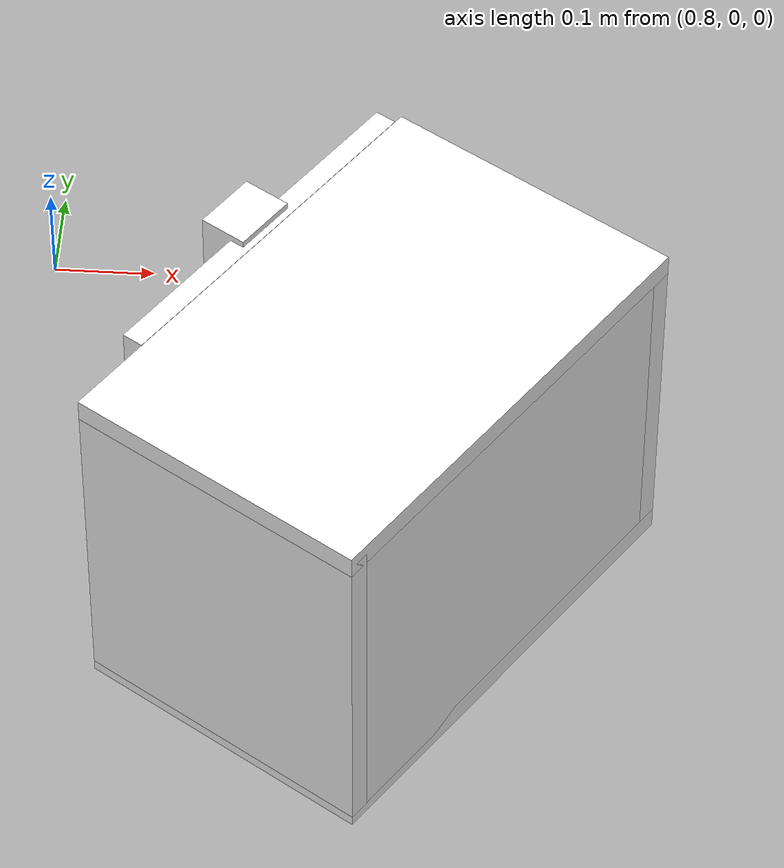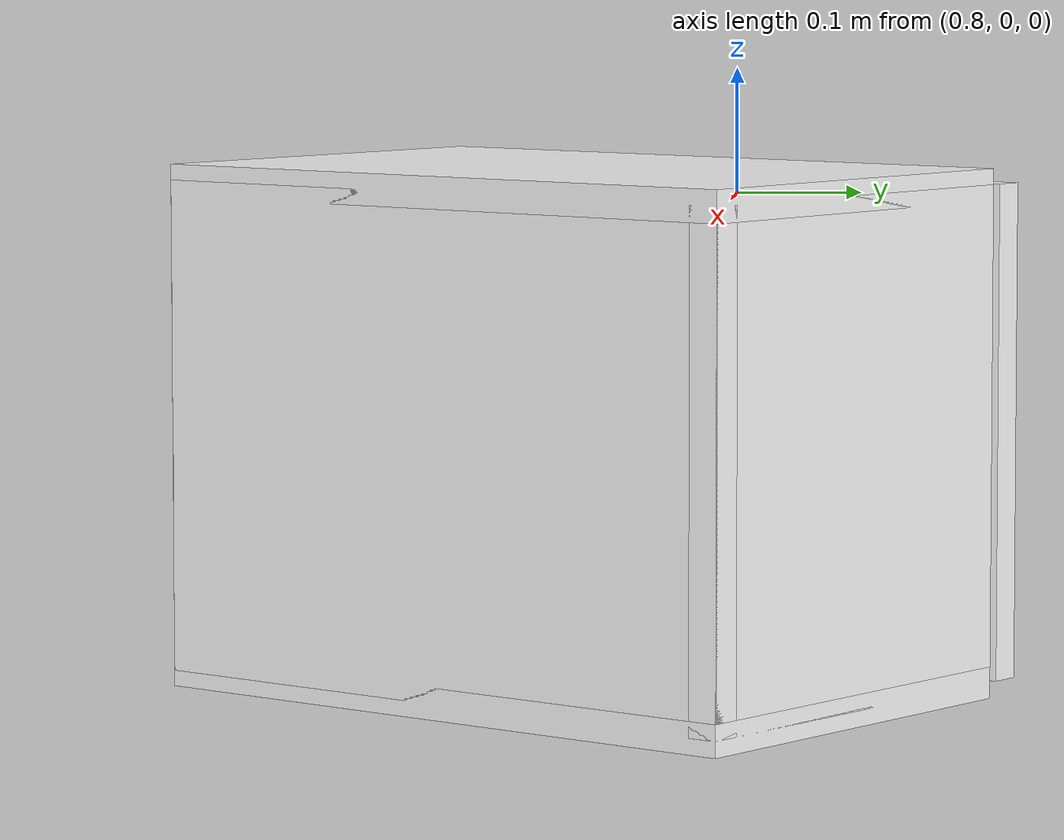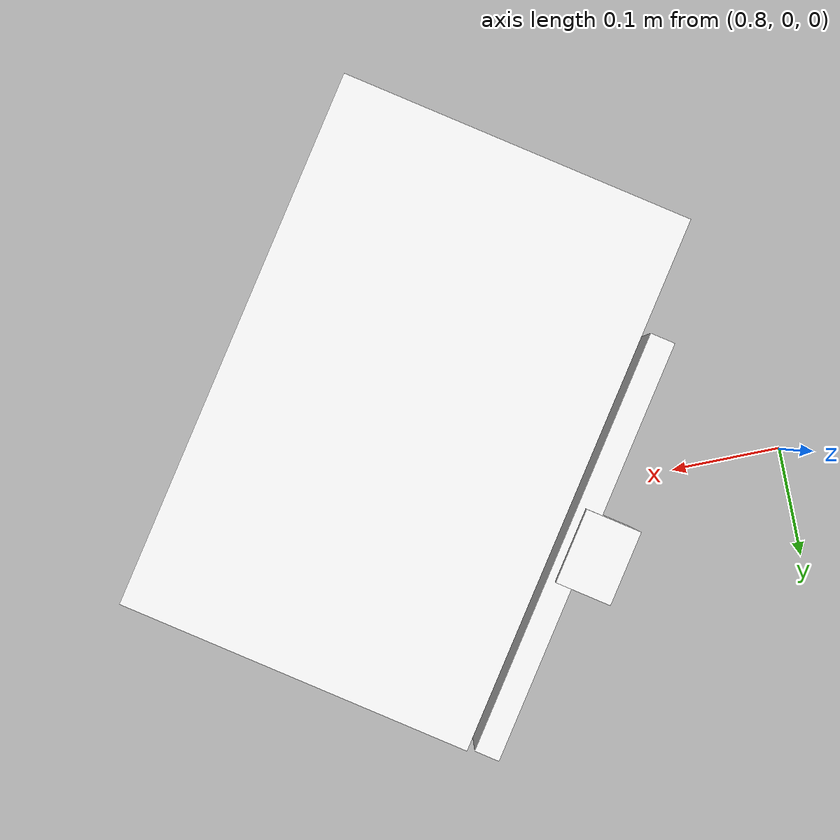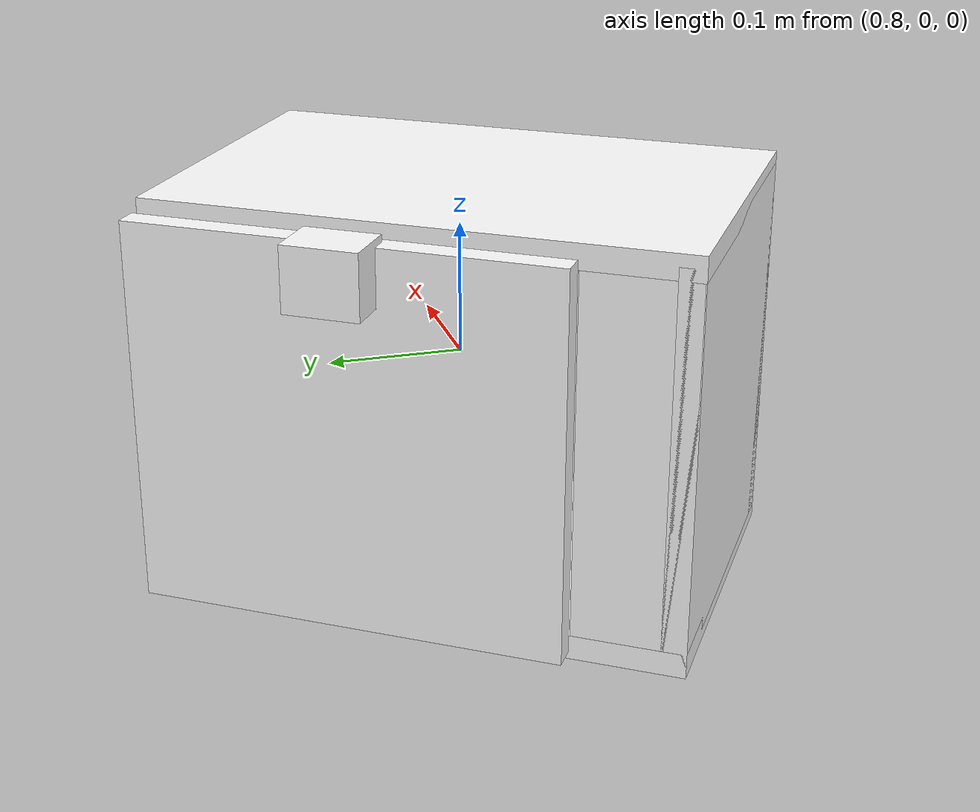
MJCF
<mujoco model="cabinet">
    <compiler angle="radian" eulerseq='zxy' />
    <option gravity = "0 0 0" />
    <option>
        <flag contact = "disable"/>
    </option>
    <statistic	extent="1.0" center="0.0 0.0 0.0"/>
    <visual>
        <map fogstart="3" fogend="5" force="0.1" znear=" 0.100000 " zfar=" 12.000000 "/>
    </visual>
    <size njmax="500" nconmax="100" />
    <actuator>
        <velocity joint="bottom_left_hinge" name="viva_revolution" kv='10'></velocity>
    </actuator>
    <asset>
        <texture builtin="flat" name="tabletex" height="32" width="32" rgb1="1 1 1" type="cube"></texture>
        <texture builtin="flat" name="objtex" height="32" width="32" rgb1="1 1 1" type="cube"></texture>
        <texture builtin="flat" name="handletex" height="32" width="32" rgb1="1 1 1" type="cube"></texture>
        <texture builtin="flat" name="wallpaper" height="32" width="32" rgb1="1 1 1" type="cube"></texture>
        <texture builtin="flat" name="kp" height="32" width="32" rgb1="1 1 1" type="cube"></texture>
        <material name="geomTable" shininess="0.03" specular="0.75" texture="tabletex"></material>
        <material name="geomObj" shininess="0.03" specular="0.75" texture="objtex"></material>
        <material name="geomHandle" shininess="0.03" specular="0.75" texture="handletex"></material>
        <material name="bg" shininess="0.03" specular="0.75" texture="wallpaper"></material>
        <material name="geomKeypad" shininess="0.03" specular="0.75" texture="kp"></material>
    </asset>
    <worldbody>
        <body name="cabinet_bottom" pos= " 1.131069 -0.101888 -0.345085 "  quat= " 0.295102 0.000000 0.000000 0.955466" >
            <inertial pos="0 0 0" mass="1" diaginertia="1 1 1" />
            <geom size= " 0.168376 0.257736 0.011865 "  type="box" material="geomObj" name="b"/>
            <body name="cabinet_left" pos= " 0.000000 -0.245871 0.185914 " >
                <inertial pos="0 0 0" mass="1" diaginertia="1 1 1" />
                <geom size= " 0.168376 0.011865 0.185914 "  type="box" material="geomObj" name="c" />
            </body>
            <body name="cabinet_right" pos= " 0.000000 0.245871 0.185914 " >
                <inertial pos="0 0 0" mass="1" diaginertia="1 1 1" />
                <geom size= " 0.168376 0.011865 0.185914 "  type="box" material="geomObj" name="d" />
            </body>
            <body name="cabinet_top" pos= " 0.000000 0.000000 0.371827 " >
                <inertial pos="0 0 0" mass="1" diaginertia="1 1 1" />
                <geom size= " 0.168376 0.257736 0.011865 "  type="box" material="geomObj" name="e"/>
            </body>
            <body name="cabinet_back" pos= " -0.156511 0.000000 0.185914 "  >
                <inertial pos="0 0 0" mass="1" diaginertia="1 1 1" />
                <geom size= " 0.011865 0.257736 0.185914 "  type="box" material="geomObj" name="f" />
            </body>
            <body name="cabinet_keypad" pos= " 0.011865 0.203639 0.185914 " >
                <inertial pos="0 0 0" mass="1" diaginertia="1 1 1" />
                <geom size= " 0.156511 0.053097 0.174049 "  type="box" material="geomKeypad" name="keypizzlemynizzle" />
            </body>
            <body name="cabinet_left_hinge" pos= " 0.168376 -0.053097 0.000000 " >
                <inertial pos= " 0.020000 0.000000 0.185914 "  mass="1" diaginertia="1 1 1" />
                <joint name="bottom_left_hinge" type="hinge" pos="0 0 0" axis="0 1 0" limited="true" range= "0 2.3"  />
                <geom size= " 0.011865 0.204639 0.185914 "  pos= " 0.020000 0.000000 0.185914 "  type="box" material="geomObj" name="g"/>
                <body name="handle_link" pos= " 0.042094 0.000000 0.348097 " >
                    <inertial pos="0 0 0" mass="1" diaginertia="1 1 1" />
                    <geom size= " 0.026568 0.035743 0.030747 "  type="box" material="geomHandle" name="h"/>
                </body>
            </body>
        </body>
        <body name="external_camera_body_0" pos="0.0 0 0.00">
            <camera euler="-1.57 1.57 0.0" fovy=" 54.280851 " name="external_camera_0" pos="0.0 0 0"></camera>
            <inertial pos= " 0.00 0.0 0.000000 " mass="1" diaginertia="1 1 1" />
            <joint name="cam_j" pos="0.0 0 0" axis = "1 0 0" type="free" />
        </body>
    </worldbody>
</mujoco>
